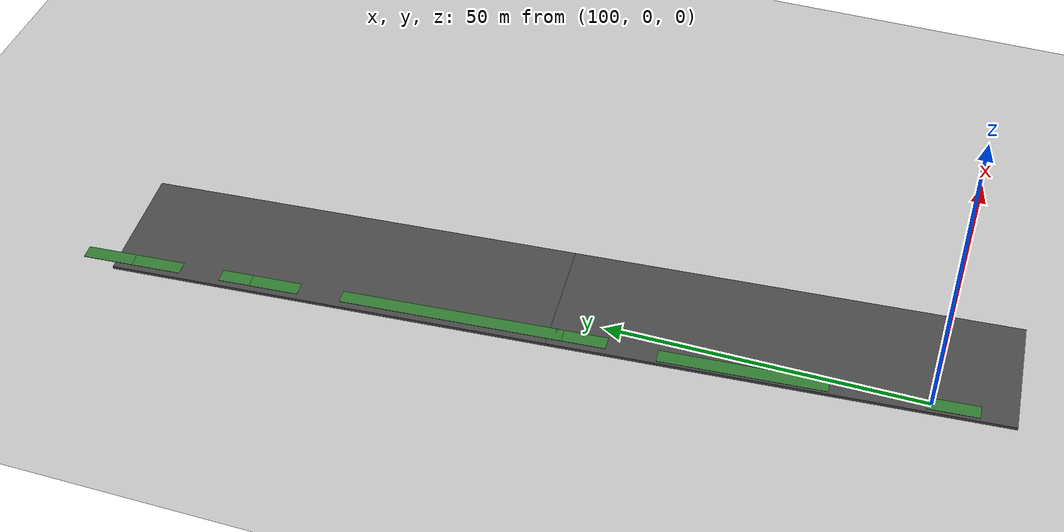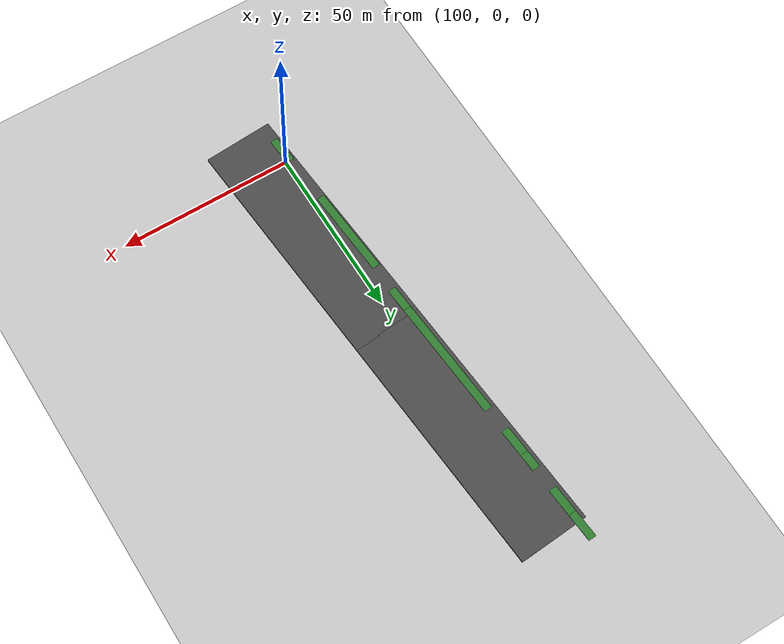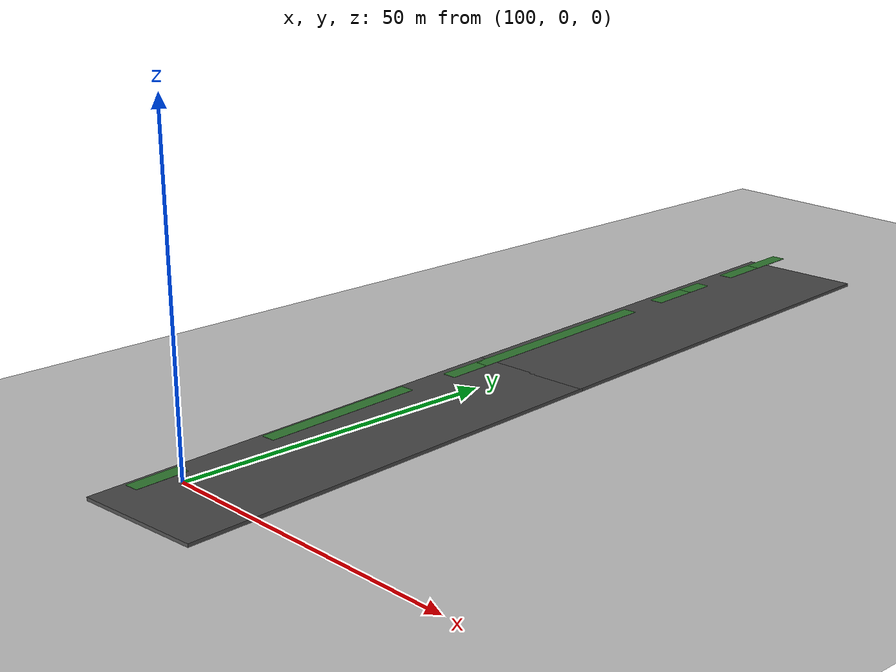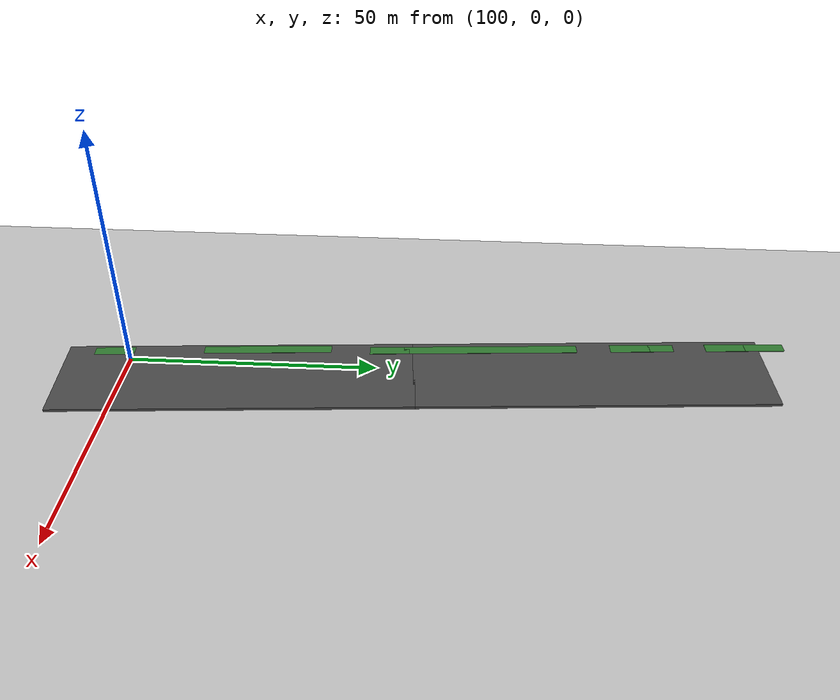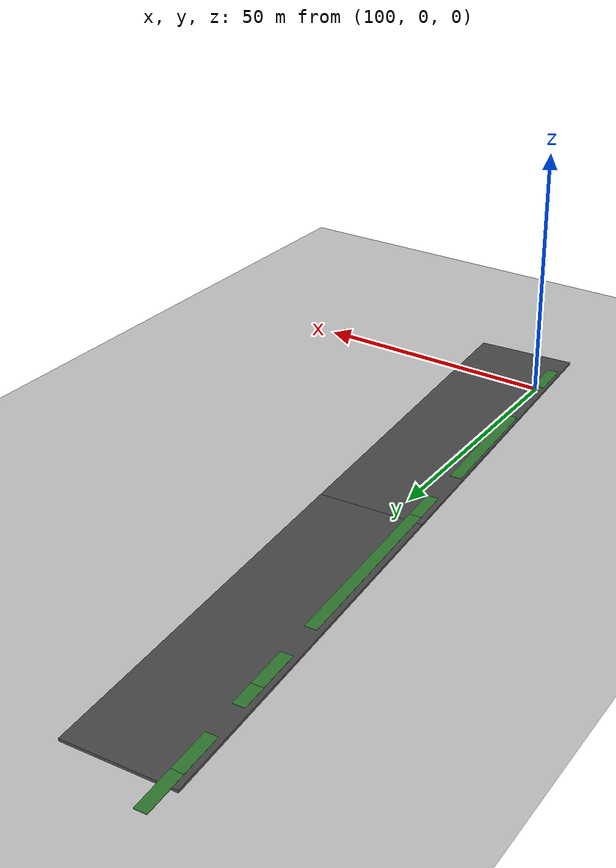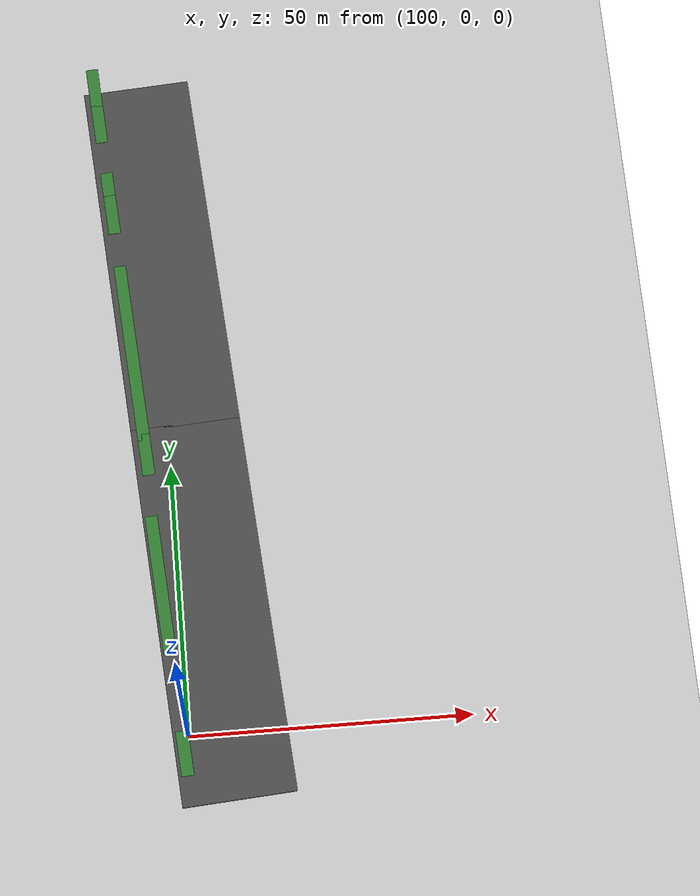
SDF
<sdf version="1.7">
 <world name="default">
  <model name="ground_plane">
   <static>1</static>
   <link name="link">
    <collision name="collision">
     <geometry><plane><normal>0 0 1</normal><size>100 100</size></plane></geometry>
     <surface><friction><ode><mu>100</mu><mu2>50</mu2></ode></friction></surface>
    </collision>
    <visual name="visual">
     <cast_shadows>0</cast_shadows>
     <geometry><plane><normal>0 0 1</normal><size>100 100</size></plane></geometry>
     <material>
      <script><uri>file://media/materials/scripts/gazebo.material</uri><name>Gazebo/Grey</name></script>
     </material>
    </visual>
   </link>
  </model>
  <model name="asphalt_plane_0_clone">
   <link name="link">
    <pose>0 0 1.015 0 -0 0</pose>
    <inertial>
     <mass>1</mass>
     <inertia><ixx>1</ixx><ixy>0</ixy><ixz>0</ixz><iyy>1</iyy><iyz>0</iyz><izz>1</izz></inertia>
    </inertial>
    <visual name="visual">
     <cast_shadows>0</cast_shadows>
     <geometry><box><size>70 20 0.5</size></box></geometry>
     <material>
      <script>
       <uri>model://asphalt_plane/materials/scripts</uri>
       <uri>model://asphalt_plane/materials/textures</uri>
       <name>vrc/asphalt</name>
      </script>
      <shader type="pixel"><normal_map>__default__</normal_map></shader>
      <ambient>0.5 0.5 0.5 1</ambient>
      <diffuse>0.5 0.5 0.5 1</diffuse>
      <specular>0.2 0.2 0.2 1</specular>
      <emissive>0 0 0 1</emissive>
     </material>
    </visual>
    <collision name="collision">
     <geometry><box><size>70 20 0.5</size></box></geometry>
     <surface>
      <friction>
       <ode><mu>1</mu><mu2>1</mu2><fdir1>0 0 0</fdir1><slip1>0.001</slip1><slip2>1e-05</slip2></ode>
       <torsional>
        <coefficient>1</coefficient>
        <patch_radius>0</patch_radius>
        <surface_radius>0</surface_radius>
        <use_patch_radius>1</use_patch_radius>
        <ode><slip>0</slip></ode>
       </torsional>
      </friction>
      <bounce><restitution_coefficient>0</restitution_coefficient><threshold>1e+06</threshold></bounce>
      <contact>
       <collide_without_contact>0</collide_without_contact>
       <collide_without_contact_bitmask>1</collide_without_contact_bitmask>
       <collide_bitmask>1</collide_bitmask>
       <ode>
        <soft_cfm>0</soft_cfm>
        <soft_erp>0.2</soft_erp>
        <kp>1e+13</kp>
        <kd>1</kd>
        <max_vel>0.01</max_vel>
        <min_depth>0</min_depth>
       </ode>
       <bullet>
        <split_impulse>1</split_impulse>
        <split_impulse_penetration_threshold>-0.01</split_impulse_penetration_threshold>
        <soft_cfm>0</soft_cfm>
        <soft_erp>0.2</soft_erp>
        <kp>1e+13</kp>
        <kd>1</kd>
       </bullet>
      </contact>
     </surface>
    </collision>
   </link>
   <static>1</static>
   <pose>100.593 92.427 0 0 0 -1.498</pose>
  </model>
  <model name="asphalt_plane_0_clone_clone">
   <link name="link">
    <pose>0 0 1.015 0 -0 0</pose>
    <inertial>
     <mass>1</mass>
     <inertia><ixx>1</ixx><ixy>0</ixy><ixz>0</ixz><iyy>1</iyy><iyz>0</iyz><izz>1</izz></inertia>
    </inertial>
    <visual name="visual">
     <cast_shadows>0</cast_shadows>
     <geometry><box><size>70 20 0.5</size></box></geometry>
     <material>
      <script>
       <uri>model://asphalt_plane/materials/scripts</uri>
       <uri>model://asphalt_plane/materials/textures</uri>
       <name>vrc/asphalt</name>
      </script>
      <shader type="pixel"><normal_map>__default__</normal_map></shader>
      <ambient>0.5 0.5 0.5 1</ambient>
      <diffuse>0.5 0.5 0.5 1</diffuse>
      <specular>0.2 0.2 0.2 1</specular>
      <emissive>0 0 0 1</emissive>
     </material>
    </visual>
    <collision name="collision">
     <geometry><box><size>70 20 0.5</size></box></geometry>
     <surface>
      <friction>
       <ode><mu>1</mu><mu2>1</mu2><fdir1>0 0 0</fdir1><slip1>0.001</slip1><slip2>1e-05</slip2></ode>
       <torsional>
        <coefficient>1</coefficient>
        <patch_radius>0</patch_radius>
        <surface_radius>0</surface_radius>
        <use_patch_radius>1</use_patch_radius>
        <ode><slip>0</slip></ode>
       </torsional>
      </friction>
      <bounce><restitution_coefficient>0</restitution_coefficient><threshold>1e+06</threshold></bounce>
      <contact>
       <collide_without_contact>0</collide_without_contact>
       <collide_without_contact_bitmask>1</collide_without_contact_bitmask>
       <collide_bitmask>1</collide_bitmask>
       <ode>
        <soft_cfm>0</soft_cfm>
        <soft_erp>0.2</soft_erp>
        <kp>1e+13</kp>
        <kd>1</kd>
        <max_vel>0.01</max_vel>
        <min_depth>0</min_depth>
       </ode>
       <bullet>
        <split_impulse>1</split_impulse>
        <split_impulse_penetration_threshold>-0.01</split_impulse_penetration_threshold>
        <soft_cfm>0</soft_cfm>
        <soft_erp>0.2</soft_erp>
        <kp>1e+13</kp>
        <kd>1</kd>
       </bullet>
      </contact>
     </surface>
    </collision>
   </link>
   <static>1</static>
   <pose>105.657 22.9966 0 0 0 -1.498</pose>
  </model>
  <model name="grass_plane_SM_1">
   <link name="link">
    <pose>0 0 1.255 0 0 -1.5905</pose>
    <inertial>
     <mass>1</mass>
     <inertia><ixx>1</ixx><ixy>0</ixy><ixz>0</ixz><iyy>1</iyy><iyz>0</iyz><izz>1</izz></inertia>
    </inertial>
    <visual name="visual">
     <cast_shadows>0</cast_shadows>
     <geometry><box><size>8 2.25 0.1</size></box></geometry>
     <material>
      <script>
       <uri>/home/albert/marinero_ws/src/marinero_simulations/models/grass_plane_SM/materials/scripts</uri>
       <uri>/home/albert/marinero_ws/src/marinero_simulations/models/grass_plane_SM/materials/textures/grass.jpg</uri>
       <name>grass_SM/texture</name>
      </script>
      <shader type="pixel"><normal_map>__default__</normal_map></shader>
      <ambient>0.2 0.5 0.2 1</ambient>
      <diffuse>0.2 0.5 0.2 1</diffuse>
      <specular>0.2 0.2 0.2 1</specular>
      <emissive>0 0 0 1</emissive>
     </material>
    </visual>
    <collision name="collision">
     <geometry><box><size>8 2.25 0.1</size></box></geometry>
     <surface>
      <friction>
       <ode><mu>1</mu><mu2>1</mu2><fdir1>0 0 0</fdir1><slip1>0.001</slip1><slip2>1e-05</slip2></ode>
       <torsional>
        <coefficient>1</coefficient>
        <patch_radius>0</patch_radius>
        <surface_radius>0</surface_radius>
        <use_patch_radius>1</use_patch_radius>
        <ode><slip>0</slip></ode>
       </torsional>
      </friction>
      <bounce><restitution_coefficient>0</restitution_coefficient><threshold>1e+06</threshold></bounce>
      <contact>
       <collide_without_contact>0</collide_without_contact>
       <collide_without_contact_bitmask>1</collide_without_contact_bitmask>
       <collide_bitmask>1</collide_bitmask>
       <ode>
        <soft_cfm>0</soft_cfm>
        <soft_erp>0.2</soft_erp>
        <kp>1e+13</kp>
        <kd>1</kd>
        <max_vel>0.01</max_vel>
        <min_depth>0</min_depth>
       </ode>
       <bullet>
        <split_impulse>1</split_impulse>
        <split_impulse_penetration_threshold>-0.01</split_impulse_penetration_threshold>
        <soft_cfm>0</soft_cfm>
        <soft_erp>0.2</soft_erp>
        <kp>1e+13</kp>
        <kd>1</kd>
       </bullet>
      </contact>
     </surface>
    </collision>
   </link>
   <static>1</static>
   <pose>99.2049 -3.1658 0 0 -0 0.0925</pose>
  </model>
  <model name="grass_plane_M_0">
   <link name="link">
    <pose>0 0 1.255 0 0 -1.5905</pose>
    <inertial>
     <mass>1</mass>
     <inertia><ixx>1</ixx><ixy>0</ixy><ixz>0</ixz><iyy>1</iyy><iyz>0</iyz><izz>1</izz></inertia>
    </inertial>
    <visual name="visual">
     <cast_shadows>0</cast_shadows>
     <geometry><box><size>25.75 2.25 0.1</size></box></geometry>
     <material>
      <script>
       <uri>/home/albert/marinero_ws/src/marinero_simulations/models/grass_plane_M/materials/scripts</uri>
       <uri>/home/albert/marinero_ws/src/marinero_simulations/models/grass_plane_M/materials/textures/grass.jpg</uri>
       <name>grass_M/texture</name>
      </script>
      <shader type="pixel"><normal_map>__default__</normal_map></shader>
      <ambient>0.2 0.5 0.2 1</ambient>
      <diffuse>0.2 0.5 0.2 1</diffuse>
      <specular>0.2 0.2 0.2 1</specular>
      <emissive>0 0 0 1</emissive>
     </material>
    </visual>
    <collision name="collision">
     <geometry><box><size>25.75 2.25 0.1</size></box></geometry>
     <surface>
      <friction>
       <ode><mu>1</mu><mu2>1</mu2><fdir1>0 0 0</fdir1><slip1>0.001</slip1><slip2>1e-05</slip2></ode>
       <torsional>
        <coefficient>1</coefficient>
        <patch_radius>0</patch_radius>
        <surface_radius>0</surface_radius>
        <use_patch_radius>1</use_patch_radius>
        <ode><slip>0</slip></ode>
       </torsional>
      </friction>
      <bounce><restitution_coefficient>0</restitution_coefficient><threshold>1e+06</threshold></bounce>
      <contact>
       <collide_without_contact>0</collide_without_contact>
       <collide_without_contact_bitmask>1</collide_without_contact_bitmask>
       <collide_bitmask>1</collide_bitmask>
       <ode>
        <soft_cfm>0</soft_cfm>
        <soft_erp>0.2</soft_erp>
        <kp>1e+13</kp>
        <kd>1</kd>
        <max_vel>0.01</max_vel>
        <min_depth>0</min_depth>
       </ode>
       <bullet>
        <split_impulse>1</split_impulse>
        <split_impulse_penetration_threshold>-0.01</split_impulse_penetration_threshold>
        <soft_cfm>0</soft_cfm>
        <soft_erp>0.2</soft_erp>
        <kp>1e+13</kp>
        <kd>1</kd>
       </bullet>
      </contact>
     </surface>
    </collision>
   </link>
   <static>1</static>
   <pose>96.8281 27.6528 0 0 -0 0.0925</pose>
  </model>
  <model name="grass_plane_3">
   <link name="link">
    <pose>0 0 1.255 0 0 -1.5905</pose>
    <inertial>
     <mass>1</mass>
     <inertia><ixx>1</ixx><ixy>0</ixy><ixz>0</ixz><iyy>1</iyy><iyz>0</iyz><izz>1</izz></inertia>
    </inertial>
    <visual name="visual">
     <cast_shadows>0</cast_shadows>
     <geometry><box><size>35 2.25 0.1</size></box></geometry>
     <material>
      <script>
       <uri>model://grass_plane/materials/scripts</uri>
       <uri>model://grass_plane/materials/textures/grass.jpg</uri>
       <name>grass/texture</name>
      </script>
      <shader type="pixel"><normal_map>__default__</normal_map></shader>
      <ambient>0.2 0.5 0.2 1</ambient>
      <diffuse>0.2 0.5 0.2 1</diffuse>
      <specular>0.2 0.2 0.2 1</specular>
      <emissive>0 0 0 1</emissive>
     </material>
    </visual>
    <collision name="collision">
     <geometry><box><size>35 2.25 0.1</size></box></geometry>
     <surface>
      <friction>
       <ode><mu>1</mu><mu2>1</mu2><fdir1>0 0 0</fdir1><slip1>0.001</slip1><slip2>1e-05</slip2></ode>
       <torsional>
        <coefficient>1</coefficient>
        <patch_radius>0</patch_radius>
        <surface_radius>0</surface_radius>
        <use_patch_radius>1</use_patch_radius>
        <ode><slip>0</slip></ode>
       </torsional>
      </friction>
      <bounce><restitution_coefficient>0</restitution_coefficient><threshold>1e+06</threshold></bounce>
      <contact>
       <collide_without_contact>0</collide_without_contact>
       <collide_without_contact_bitmask>1</collide_without_contact_bitmask>
       <collide_bitmask>1</collide_bitmask>
       <ode>
        <soft_cfm>0</soft_cfm>
        <soft_erp>0.2</soft_erp>
        <kp>1e+13</kp>
        <kd>1</kd>
        <max_vel>0.01</max_vel>
        <min_depth>0</min_depth>
       </ode>
       <bullet>
        <split_impulse>1</split_impulse>
        <split_impulse_penetration_threshold>-0.01</split_impulse_penetration_threshold>
        <soft_cfm>0</soft_cfm>
        <soft_erp>0.2</soft_erp>
        <kp>1e+13</kp>
        <kd>1</kd>
       </bullet>
      </contact>
     </surface>
    </collision>
   </link>
   <static>1</static>
   <pose>94.2109 72.622 0 0 -0 0.0925</pose>
  </model>
  <model name="grass_plane_SM_2">
   <link name="link">
    <pose>0 0 1.255 0 0 -1.5905</pose>
    <inertial>
     <mass>1</mass>
     <inertia><ixx>1</ixx><ixy>0</ixy><ixz>0</ixz><iyy>1</iyy><iyz>0</iyz><izz>1</izz></inertia>
    </inertial>
    <visual name="visual">
     <cast_shadows>0</cast_shadows>
     <geometry><box><size>8 2.25 0.1</size></box></geometry>
     <material>
      <script>
       <uri>/home/albert/marinero_ws/src/marinero_simulations/models/grass_plane_SM/materials/scripts</uri>
       <uri>/home/albert/marinero_ws/src/marinero_simulations/models/grass_plane_SM/materials/textures/grass.jpg</uri>
       <name>grass_SM/texture</name>
      </script>
      <shader type="pixel"><normal_map>__default__</normal_map></shader>
      <ambient>0.2 0.5 0.2 1</ambient>
      <diffuse>0.2 0.5 0.2 1</diffuse>
      <specular>0.2 0.2 0.2 1</specular>
      <emissive>0 0 0 1</emissive>
     </material>
    </visual>
    <collision name="collision">
     <geometry><box><size>8 2.25 0.1</size></box></geometry>
     <surface>
      <friction>
       <ode><mu>1</mu><mu2>1</mu2><fdir1>0 0 0</fdir1><slip1>0.001</slip1><slip2>1e-05</slip2></ode>
       <torsional>
        <coefficient>1</coefficient>
        <patch_radius>0</patch_radius>
        <surface_radius>0</surface_radius>
        <use_patch_radius>1</use_patch_radius>
        <ode><slip>0</slip></ode>
       </torsional>
      </friction>
      <bounce><restitution_coefficient>0</restitution_coefficient><threshold>1e+06</threshold></bounce>
      <contact>
       <collide_without_contact>0</collide_without_contact>
       <collide_without_contact_bitmask>1</collide_without_contact_bitmask>
       <collide_bitmask>1</collide_bitmask>
       <ode>
        <soft_cfm>0</soft_cfm>
        <soft_erp>0.2</soft_erp>
        <kp>1e+13</kp>
        <kd>1</kd>
        <max_vel>0.01</max_vel>
        <min_depth>0</min_depth>
       </ode>
       <bullet>
        <split_impulse>1</split_impulse>
        <split_impulse_penetration_threshold>-0.01</split_impulse_penetration_threshold>
        <soft_cfm>0</soft_cfm>
        <soft_erp>0.2</soft_erp>
        <kp>1e+13</kp>
        <kd>1</kd>
       </bullet>
      </contact>
     </surface>
    </collision>
   </link>
   <static>1</static>
   <pose>92.0917 100.866 0 0 -0 0.0925</pose>
  </model>
  <model name="grass_plane_SM_3">
   <link name="link">
    <pose>0 0 1.255 0 0 -1.5905</pose>
    <inertial>
     <mass>1</mass>
     <inertia><ixx>1</ixx><ixy>0</ixy><ixz>0</ixz><iyy>1</iyy><iyz>0</iyz><izz>1</izz></inertia>
    </inertial>
    <visual name="visual">
     <cast_shadows>0</cast_shadows>
     <geometry><box><size>8 2.25 0.1</size></box></geometry>
     <material>
      <script>
       <uri>/home/albert/marinero_ws/src/marinero_simulations/models/grass_plane_SM/materials/scripts</uri>
       <uri>/home/albert/marinero_ws/src/marinero_simulations/models/grass_plane_SM/materials/textures/grass.jpg</uri>
       <name>grass_SM/texture</name>
      </script>
      <shader type="pixel"><normal_map>__default__</normal_map></shader>
      <ambient>0.2 0.5 0.2 1</ambient>
      <diffuse>0.2 0.5 0.2 1</diffuse>
      <specular>0.2 0.2 0.2 1</specular>
      <emissive>0 0 0 1</emissive>
     </material>
    </visual>
    <collision name="collision">
     <geometry><box><size>8 2.25 0.1</size></box></geometry>
     <surface>
      <friction>
       <ode><mu>1</mu><mu2>1</mu2><fdir1>0 0 0</fdir1><slip1>0.001</slip1><slip2>1e-05</slip2></ode>
       <torsional>
        <coefficient>1</coefficient>
        <patch_radius>0</patch_radius>
        <surface_radius>0</surface_radius>
        <use_patch_radius>1</use_patch_radius>
        <ode><slip>0</slip></ode>
       </torsional>
      </friction>
      <bounce><restitution_coefficient>0</restitution_coefficient><threshold>1e+06</threshold></bounce>
      <contact>
       <collide_without_contact>0</collide_without_contact>
       <collide_without_contact_bitmask>1</collide_without_contact_bitmask>
       <collide_bitmask>1</collide_bitmask>
       <ode>
        <soft_cfm>0</soft_cfm>
        <soft_erp>0.2</soft_erp>
        <kp>1e+13</kp>
        <kd>1</kd>
        <max_vel>0.01</max_vel>
        <min_depth>0</min_depth>
       </ode>
       <bullet>
        <split_impulse>1</split_impulse>
        <split_impulse_penetration_threshold>-0.01</split_impulse_penetration_threshold>
        <soft_cfm>0</soft_cfm>
        <soft_erp>0.2</soft_erp>
        <kp>1e+13</kp>
        <kd>1</kd>
       </bullet>
      </contact>
     </surface>
    </collision>
   </link>
   <static>1</static>
   <pose>90.11 128.039 0 0 -0 0.0925</pose>
  </model>
  <model name="grass_plane_SM_3_clone">
   <link name="link">
    <pose>0 0 1.255 0 0 -1.5905</pose>
    <inertial>
     <mass>1</mass>
     <inertia><ixx>1</ixx><ixy>0</ixy><ixz>0</ixz><iyy>1</iyy><iyz>0</iyz><izz>1</izz></inertia>
    </inertial>
    <visual name="visual">
     <cast_shadows>0</cast_shadows>
     <geometry><box><size>8 2.25 0.1</size></box></geometry>
     <material>
      <script>
       <uri>/home/albert/marinero_ws/src/marinero_simulations/models/grass_plane_SM/materials/scripts</uri>
       <uri>/home/albert/marinero_ws/src/marinero_simulations/models/grass_plane_SM/materials/textures/grass.jpg</uri>
       <name>grass_SM/texture</name>
      </script>
      <shader type="pixel"><normal_map>__default__</normal_map></shader>
      <ambient>0.2 0.5 0.2 1</ambient>
      <diffuse>0.2 0.5 0.2 1</diffuse>
      <specular>0.2 0.2 0.2 1</specular>
      <emissive>0 0 0 1</emissive>
     </material>
    </visual>
    <collision name="collision">
     <geometry><box><size>8 2.25 0.1</size></box></geometry>
     <surface>
      <friction>
       <ode><mu>1</mu><mu2>1</mu2><fdir1>0 0 0</fdir1><slip1>0.001</slip1><slip2>1e-05</slip2></ode>
       <torsional>
        <coefficient>1</coefficient>
        <patch_radius>0</patch_radius>
        <surface_radius>0</surface_radius>
        <use_patch_radius>1</use_patch_radius>
        <ode><slip>0</slip></ode>
       </torsional>
      </friction>
      <bounce><restitution_coefficient>0</restitution_coefficient><threshold>1e+06</threshold></bounce>
      <contact>
       <collide_without_contact>0</collide_without_contact>
       <collide_without_contact_bitmask>1</collide_without_contact_bitmask>
       <collide_bitmask>1</collide_bitmask>
       <ode>
        <soft_cfm>0</soft_cfm>
        <soft_erp>0.2</soft_erp>
        <kp>1e+13</kp>
        <kd>1</kd>
        <max_vel>0.01</max_vel>
        <min_depth>0</min_depth>
       </ode>
       <bullet>
        <split_impulse>1</split_impulse>
        <split_impulse_penetration_threshold>-0.01</split_impulse_penetration_threshold>
        <soft_cfm>0</soft_cfm>
        <soft_erp>0.2</soft_erp>
        <kp>1e+13</kp>
        <kd>1</kd>
       </bullet>
      </contact>
     </surface>
    </collision>
   </link>
   <static>1</static>
   <pose>90.6846 120.156 0 0 -0 0.0925</pose>
  </model>
  <model name="grass_plane_S_1">
   <link name="link">
    <pose>0 0 1.255 0 0 -1.5905</pose>
    <inertial>
     <mass>1</mass>
     <inertia><ixx>1</ixx><ixy>0</ixy><ixz>0</ixz><iyy>1</iyy><iyz>0</iyz><izz>1</izz></inertia>
    </inertial>
    <visual name="visual">
     <cast_shadows>0</cast_shadows>
     <geometry><box><size>5 2.25 0.1</size></box></geometry>
     <material>
      <script>
       <uri>/home/albert/marinero_ws/src/marinero_simulations/models/grass_plane_S/materials/scripts</uri>
       <uri>/home/albert/marinero_ws/src/marinero_simulations/models/grass_plane_S/materials/textures/grass.jpg</uri>
       <name>grass_V2/texture</name>
      </script>
      <shader type="pixel"><normal_map>__default__</normal_map></shader>
      <ambient>0.2 0.5 0.2 1</ambient>
      <diffuse>0.2 0.5 0.2 1</diffuse>
      <specular>0.2 0.2 0.2 1</specular>
      <emissive>0 0 0 1</emissive>
     </material>
    </visual>
    <collision name="collision">
     <geometry><box><size>5 2.25 0.1</size></box></geometry>
     <surface>
      <friction>
       <ode><mu>1</mu><mu2>1</mu2><fdir1>0 0 0</fdir1><slip1>0.001</slip1><slip2>1e-05</slip2></ode>
       <torsional>
        <coefficient>1</coefficient>
        <patch_radius>0</patch_radius>
        <surface_radius>0</surface_radius>
        <use_patch_radius>1</use_patch_radius>
        <ode><slip>0</slip></ode>
       </torsional>
      </friction>
      <bounce><restitution_coefficient>0</restitution_coefficient><threshold>1e+06</threshold></bounce>
      <contact>
       <collide_without_contact>0</collide_without_contact>
       <collide_without_contact_bitmask>1</collide_without_contact_bitmask>
       <collide_bitmask>1</collide_bitmask>
       <ode>
        <soft_cfm>0</soft_cfm>
        <soft_erp>0.2</soft_erp>
        <kp>1e+13</kp>
        <kd>1</kd>
        <max_vel>0.01</max_vel>
        <min_depth>0</min_depth>
       </ode>
       <bullet>
        <split_impulse>1</split_impulse>
        <split_impulse_penetration_threshold>-0.01</split_impulse_penetration_threshold>
        <soft_cfm>0</soft_cfm>
        <soft_erp>0.2</soft_erp>
        <kp>1e+13</kp>
        <kd>1</kd>
       </bullet>
      </contact>
     </surface>
    </collision>
   </link>
   <static>1</static>
   <pose>91.632 107.171 0 0 -0 0.0925</pose>
  </model>
  <model name="grass_plane_SM_5">
   <link name="link">
    <pose>0 0 1.255 0 0 -1.5905</pose>
    <inertial>
     <mass>1</mass>
     <inertia><ixx>1</ixx><ixy>0</ixy><ixz>0</ixz><iyy>1</iyy><iyz>0</iyz><izz>1</izz></inertia>
    </inertial>
    <visual name="visual">
     <cast_shadows>0</cast_shadows>
     <geometry><box><size>8 2.25 0.1</size></box></geometry>
     <material>
      <script>
       <uri>/home/albert/marinero_ws/src/marinero_simulations/models/grass_plane_SM/materials/scripts</uri>
       <uri>/home/albert/marinero_ws/src/marinero_simulations/models/grass_plane_SM/materials/textures/grass.jpg</uri>
       <name>grass_SM/texture</name>
      </script>
      <shader type="pixel"><normal_map>__default__</normal_map></shader>
      <ambient>0.2 0.5 0.2 1</ambient>
      <diffuse>0.2 0.5 0.2 1</diffuse>
      <specular>0.2 0.2 0.2 1</specular>
      <emissive>0 0 0 1</emissive>
     </material>
    </visual>
    <collision name="collision">
     <geometry><box><size>8 2.25 0.1</size></box></geometry>
     <surface>
      <friction>
       <ode><mu>1</mu><mu2>1</mu2><fdir1>0 0 0</fdir1><slip1>0.001</slip1><slip2>1e-05</slip2></ode>
       <torsional>
        <coefficient>1</coefficient>
        <patch_radius>0</patch_radius>
        <surface_radius>0</surface_radius>
        <use_patch_radius>1</use_patch_radius>
        <ode><slip>0</slip></ode>
       </torsional>
      </friction>
      <bounce><restitution_coefficient>0</restitution_coefficient><threshold>1e+06</threshold></bounce>
      <contact>
       <collide_without_contact>0</collide_without_contact>
       <collide_without_contact_bitmask>1</collide_without_contact_bitmask>
       <collide_bitmask>1</collide_bitmask>
       <ode>
        <soft_cfm>0</soft_cfm>
        <soft_erp>0.2</soft_erp>
        <kp>1e+13</kp>
        <kd>1</kd>
        <max_vel>0.01</max_vel>
        <min_depth>0</min_depth>
       </ode>
       <bullet>
        <split_impulse>1</split_impulse>
        <split_impulse_penetration_threshold>-0.01</split_impulse_penetration_threshold>
        <soft_cfm>0</soft_cfm>
        <soft_erp>0.2</soft_erp>
        <kp>1e+13</kp>
        <kd>1</kd>
       </bullet>
      </contact>
     </surface>
    </collision>
   </link>
   <static>1</static>
   <pose>95.691 52.3242 0 0 -0 0.0925</pose>
  </model>
 </world>
</sdf>
